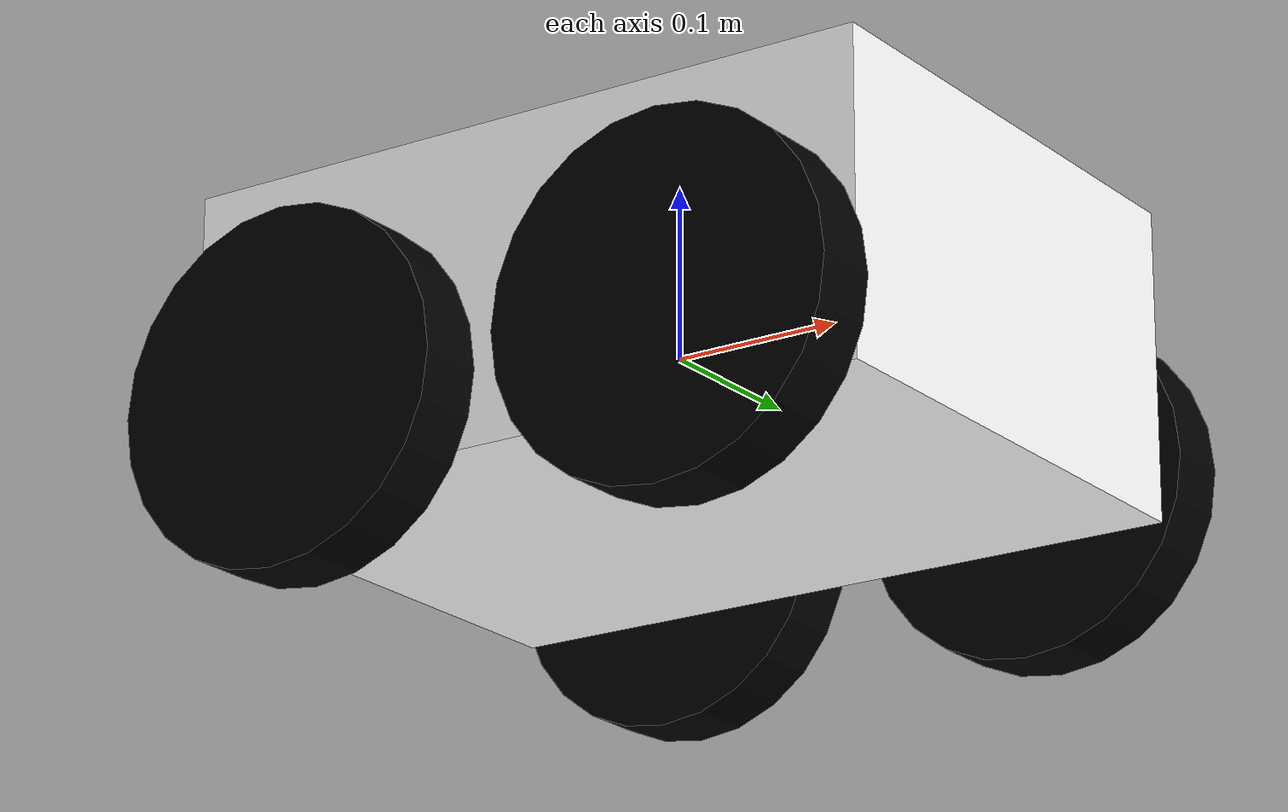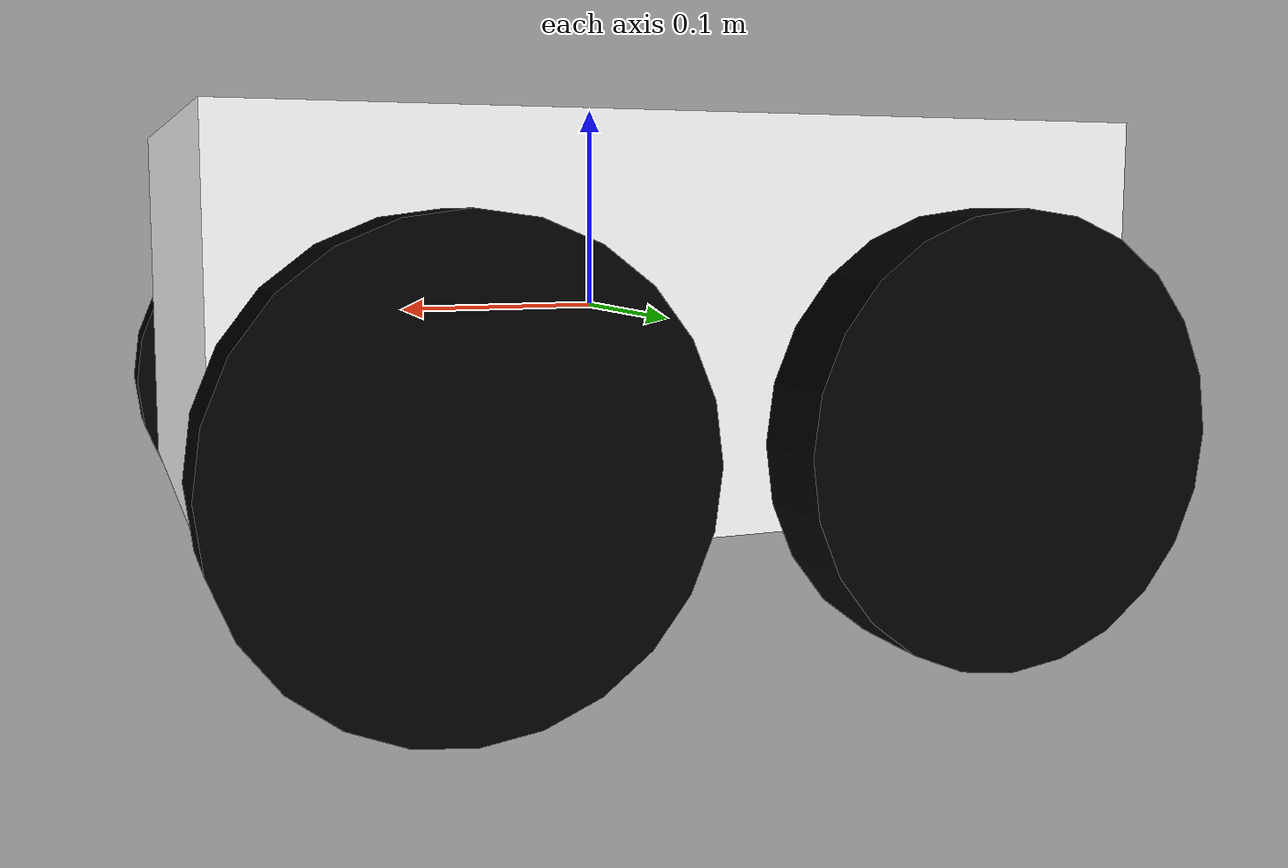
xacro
<?xml version="1.0"?>
<robot xmlns:xacro="http://www.ros.org/wiki/xacro" name="my_robot">
    <!-- Define robot constants -->
    <xacro:property name="base_width" value="0.31"/>
    <xacro:property name="base_length" value="0.42"/>
    <xacro:property name="base_height" value="0.18"/>

    <xacro:property name="wheel_radius" value="0.10"/>
    <xacro:property name="wheel_width" value="0.04"/>
    <xacro:property name="wheel_ygap" value="0.025"/>
    <xacro:property name="wheel_zoff" value="0.05"/>
    <xacro:property name="wheel_xoff" value="0.12"/>

    <!-- Define color -->
    <material name="white">
        <color rgba="1 1 1 1"/>
    </material>

    <material name="orange">
        <color rgba="1 0.3 0.1 1"/>
    </material>

    <material name="blue">
        <color rgba="0.2 0.2 1 1"/>
    </material>

    <material name="black">
        <color rgba="0 0 0 1"/>
    </material>

    <material name="red">
        <color rgba="1 0 0 1"/>
    </material>

     <!-- Define inertial (Quan tinh) property macros -->
    <xacro:macro name="box_inertial" params="m w h d">
        <inertial>
            <origin xyz="0 0 0" rpy="${pi/2} 0 ${pi/2}"/>
            <mass value="${m}"/>
            <inertia ixx="${(m/12) * (h*h + d*d)}" ixy="0.0" ixz="0.0" iyy="${(m/12) * (w*w + d*d)}" iyz="0.0" izz="${(m/12) * (w*w + h*h)}"/>
        </inertial>
    </xacro:macro>

    <xacro:macro name="cylinder_inertia" params="m r h">
        <inertial>
            <origin xyz="0 0 0" rpy="${pi/2} 0 0"/>
            <mass value="${m}"/>
            <inertia ixx="${(m/12) * (3*r*r + h*h)}" ixy="0" ixz="0" iyy="${(m/12) * (3*r*r + h*h)}" iyz="0.0" izz="${(m/12) * (r*r)}"/>
        </inertial>
    </xacro:macro>

    <xacro:macro name="sphere_inertia" params="m r">
        <inertial>
            <mass value="${m}"/>
            <inertia ixx="${(2/5) * m * (r*r)}" ixy="0" ixz="0" iyy="${(2/5) * m * (r*r)}" iyz="0.0" izz="${(2/5) * (r*r)}"/>
        </inertial>
    </xacro:macro>
    <xacro:property name="caster_xoff" value="0.14"/>

    <!-- Robot Footprint -->
    <link name="base_footprint">
        <xacro:box_inertial m="15" w="${base_width}" d="${base_length}" h="${base_height}"/>
    </link>

    <joint name="base_joint" type="fixed">
        <parent link="base_link"/>
        <child link="base_footprint"/>
        <origin xyz="0.0 0.0 -${wheel_radius+wheel_zoff}" rpy="0 0 0"/>
    </joint>

     <!-- Robot Base -->
    <link name="base_link">
        <visual>
            <geometry>
                <box size="${base_length} ${base_width} ${base_height}"/>
            </geometry>

            <material name="white"/>
        </visual>

        <collision>
            <geometry>
                <box size="${base_length} ${base_width} ${base_height}"/>
            </geometry>
        </collision>
    </link>
    <gazebo reference="base_link">
        <material>
            Gazebo/White
        </material>
    </gazebo>

    <!-- Wheels -->
    <xacro:macro name="wheel" params="prefix x_reflect y_reflect">
        <link name="${prefix}_link">
            <visual>
                <origin xyz="0 0 0" rpy="${pi/2} 0 0"/>
                <geometry>
                    <cylinder radius="${wheel_radius}" length="${wheel_width}"/>
                </geometry>
                <material name="black"/>
            </visual>

            <collision>
                <origin xyz="0 0 0" rpy="${pi/2} 0 0"/>
                <geometry>
                    <cylinder radius="${wheel_radius}" length="${wheel_width}"/>
                </geometry>
            </collision>

            <xacro:cylinder_inertia m="0.5" r="${wheel_radius}" h="${wheel_width}"/>
        </link>

        <joint name="${prefix}_joint" type="continuous">
            <parent link="base_link"/>
            <child link="${prefix}_link"/>
            <origin xyz="${x_reflect*wheel_xoff} ${y_reflect*(base_width/2+wheel_ygap)} ${-wheel_zoff}" rpy="0 0 0"/>
            <axis xyz="0 1 0"/>
        </joint>

        <gazebo reference="${prefix}_link">
            <mu1>0.1</mu1>
            <mu2>0.1</mu2>
            <material>
                Gazebo/Black
            </material>
        </gazebo>
    </xacro:macro>

    <xacro:wheel prefix="front_left" x_reflect="1" y_reflect="1" />
    <xacro:wheel prefix="front_right" x_reflect="1" y_reflect="-1" />
    <xacro:wheel prefix="back_left" x_reflect="-1" y_reflect="1" />
    <xacro:wheel prefix="back_right" x_reflect="-1" y_reflect="-1" />

    <!-- Caster Wheel -->
</robot>
